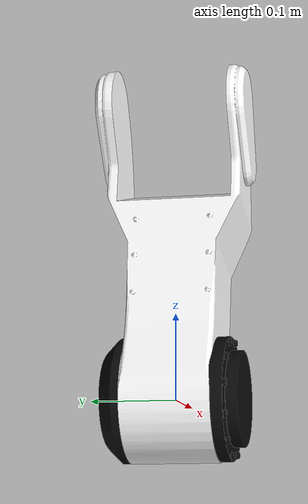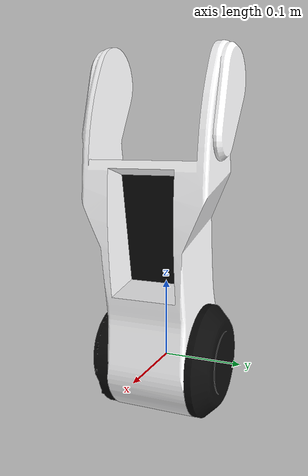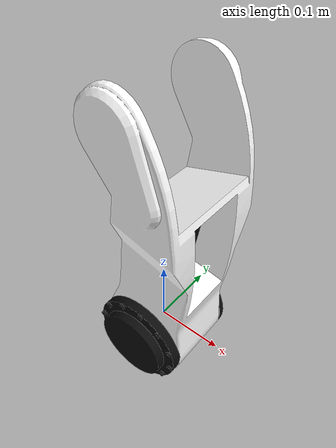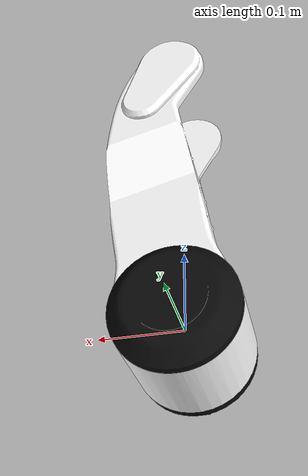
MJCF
<mujoco model="LINK_3">
  <default>
    <default class="visual">
      <geom group="2" type="mesh" contype="0" conaffinity="0"/>
    </default>
    <default class="collision">
      <geom group="3" type="mesh"/>
    </default>
  </default>
  <asset>
    <material name="254,254,255" specular="0.9973853333333333" shininess="1.0" rgba="0.996078 0.996078 1.000000 1.000000"/>
    <material name="10,10,10" specular="0.039216" shininess="1.0" rgba="0.039216 0.039216 0.039216 1.000000"/>
    <mesh file="LINK_3_0.obj"/>
    <mesh file="LINK_3_1.obj"/>
    <mesh file="LINK_3_collision_0.obj"/>
    <mesh file="LINK_3_collision_1.obj"/>
    <mesh file="LINK_3_collision_2.obj"/>
    <mesh file="LINK_3_collision_3.obj"/>
    <mesh file="LINK_3_collision_4.obj"/>
    <mesh file="LINK_3_collision_5.obj"/>
    <mesh file="LINK_3_collision_6.obj"/>
    <mesh file="LINK_3_collision_7.obj"/>
    <mesh file="LINK_3_collision_8.obj"/>
    <mesh file="LINK_3_collision_9.obj"/>
    <mesh file="LINK_3_collision_10.obj"/>
    <mesh file="LINK_3_collision_11.obj"/>
  </asset>
  <worldbody>
    <body name="LINK_3">
      <geom mesh="LINK_3_0" material="10,10,10" class="visual"/>
      <geom mesh="LINK_3_1" material="254,254,255" class="visual"/>
      <geom mesh="LINK_3_collision_0" rgba="0.4453304917538988 0.5771457137268626 0.9389107164272744 1" class="collision"/>
      <geom mesh="LINK_3_collision_1" rgba="0.12771142371276123 0.9754107075319657 0.857006355271221 1" class="collision"/>
      <geom mesh="LINK_3_collision_2" rgba="0.2863095366676718 0.6520032833322335 0.853761866234779 1" class="collision"/>
      <geom mesh="LINK_3_collision_3" rgba="0.3418200776524929 0.08272541971440417 0.05716859360787008 1" class="collision"/>
      <geom mesh="LINK_3_collision_4" rgba="0.1163825365826262 0.1658207359497028 0.6973858174934349 1" class="collision"/>
      <geom mesh="LINK_3_collision_5" rgba="0.7363413957395227 0.7293621298121133 0.5105197372640695 1" class="collision"/>
      <geom mesh="LINK_3_collision_6" rgba="0.4648596972400414 0.41182167309481976 0.9474740188974323 1" class="collision"/>
      <geom mesh="LINK_3_collision_7" rgba="0.4582918361693915 0.4799450739194848 0.4027804471770947 1" class="collision"/>
      <geom mesh="LINK_3_collision_8" rgba="0.4809196750208582 0.21461677758234288 0.4073097322100774 1" class="collision"/>
      <geom mesh="LINK_3_collision_9" rgba="0.3752735485848452 0.15184291075307688 0.10930959301306509 1" class="collision"/>
      <geom mesh="LINK_3_collision_10" rgba="0.6412913279055777 0.5859056248183729 0.3277397922474614 1" class="collision"/>
      <geom mesh="LINK_3_collision_11" rgba="0.9477771981552469 0.5167121409333437 0.7950260438467323 1" class="collision"/>
    </body>
  </worldbody>
</mujoco>
